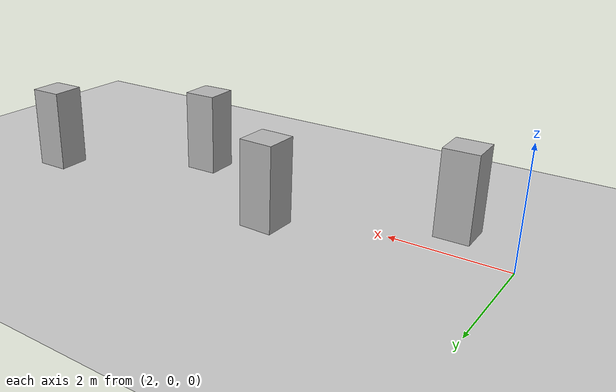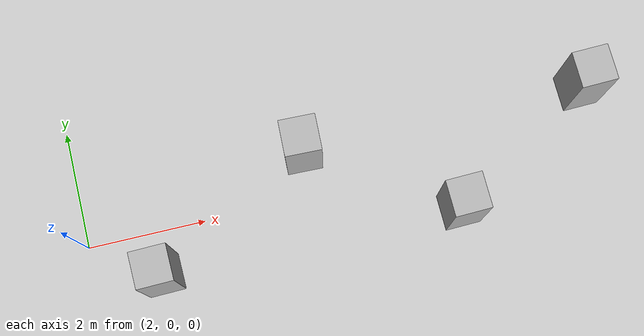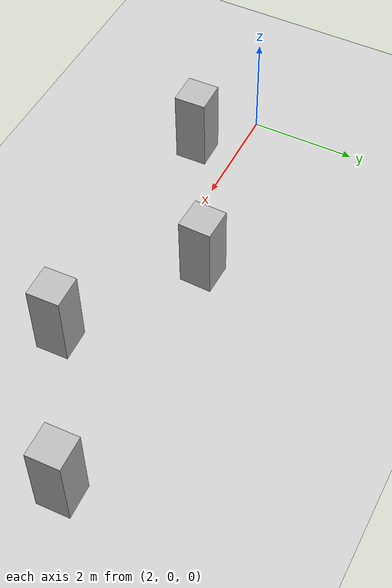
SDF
<?xml version="1.0"?>
<sdf version="1.6">
  <world name="v2-04d-static-s4603">
    <gravity>0 0 -9.81</gravity>
    <physics name="v2_deterministic" type="ode">
      <max_step_size>0.002</max_step_size>
      <real_time_update_rate>500</real_time_update_rate>
    </physics>
    <include>
      <uri>model://sun</uri>
    </include>
    <include>
      <uri>model://ground_plane</uri>
    </include>
    <model name="pillar-1">
      <static>true</static>
      <pose>3.147058246 -0.738981821 0.750000000 0 0 0.022275970</pose>
      <link name="link">
        <collision name="collision">
          <geometry>
            <box>
              <size>0.600000 0.600000 1.500000</size>
            </box>
          </geometry>
        </collision>
        <visual name="visual">
          <geometry>
            <box>
              <size>0.600000 0.600000 1.500000</size>
            </box>
          </geometry>
        </visual>
      </link>
    </model>
    <model name="pillar-2">
      <static>true</static>
      <pose>5.849011932 0.753037909 0.750000000 0 0 -0.027714731</pose>
      <link name="link">
        <collision name="collision">
          <geometry>
            <box>
              <size>0.600000 0.600000 1.500000</size>
            </box>
          </geometry>
        </collision>
        <visual name="visual">
          <geometry>
            <box>
              <size>0.600000 0.600000 1.500000</size>
            </box>
          </geometry>
        </visual>
      </link>
    </model>
    <model name="pillar-3">
      <static>true</static>
      <pose>8.207194546 -0.769896770 0.750000000 0 0 0.028614341</pose>
      <link name="link">
        <collision name="collision">
          <geometry>
            <box>
              <size>0.600000 0.600000 1.500000</size>
            </box>
          </geometry>
        </collision>
        <visual name="visual">
          <geometry>
            <box>
              <size>0.600000 0.600000 1.500000</size>
            </box>
          </geometry>
        </visual>
      </link>
    </model>
    <model name="pillar-4">
      <static>true</static>
      <pose>10.689793823 0.776023503 0.750000000 0 0 0.028569935</pose>
      <link name="link">
        <collision name="collision">
          <geometry>
            <box>
              <size>0.600000 0.600000 1.500000</size>
            </box>
          </geometry>
        </collision>
        <visual name="visual">
          <geometry>
            <box>
              <size>0.600000 0.600000 1.500000</size>
            </box>
          </geometry>
        </visual>
      </link>
    </model>
  </world>
</sdf>
